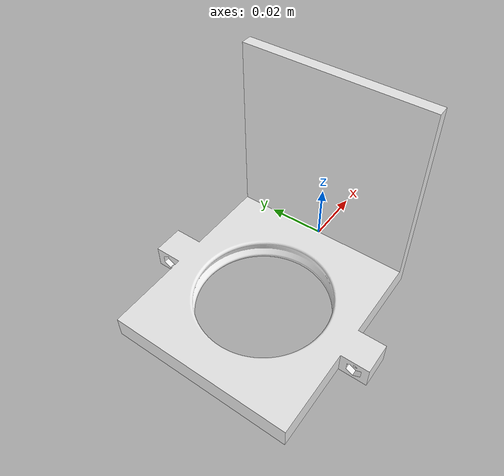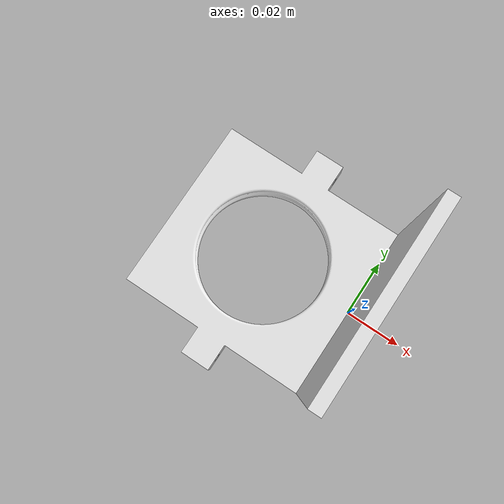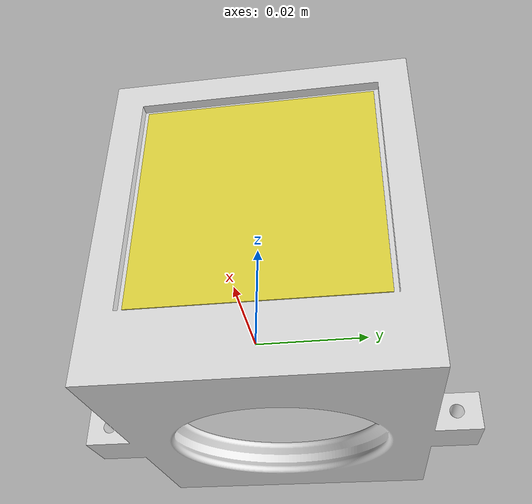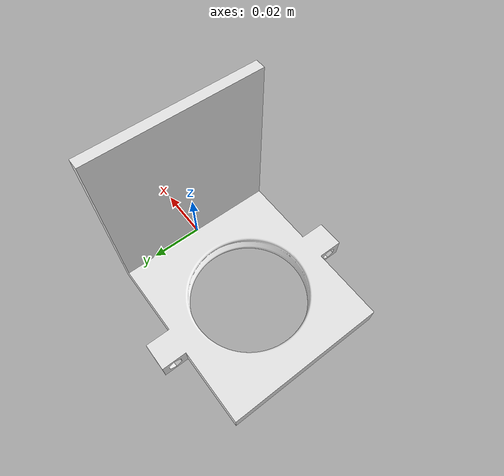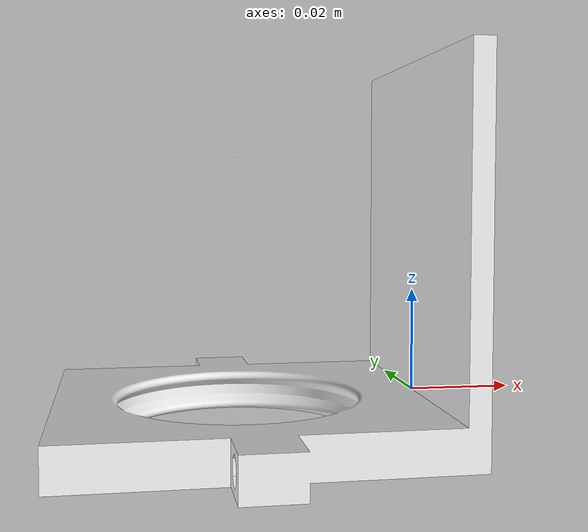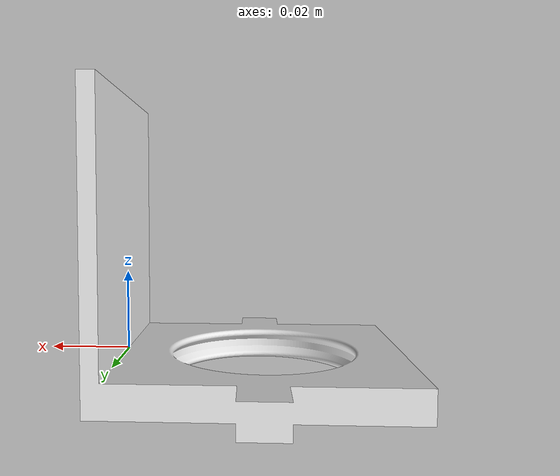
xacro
<?xml version="1.0"?>
<robot name="cup" xmlns:xacro="http://www.ros.org/wiki/xacro">

	<!-- Import the bbot macro -->
	<xacro:include filename="$(find bbot_description)/urdf/ingredient_cup.xacro"/>

  <!-- arguments to pass on -->
  <xacro:arg name="aruco_dae_path" default="bbot_aruco/markers/aruco_99_50mm.dae"/>

  <!-- call bbot xacro -->
  <xacro:cup aruco_dae_path="$(arg aruco_dae_path)"/>
</robot>

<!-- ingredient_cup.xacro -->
<robot xmlns:xacro="http://www.ros.org/wiki/xacro">
	<xacro:macro name="cup" params="aruco_dae_path">
		<gazebo reference="jigger">
	        <material>Gazebo/Grey</material>
	        <mu1>0.2</mu1>
	        <mu2>0.2</mu2>
	    </gazebo>

	    <gazebo reference="jigger_holder">
	        <material>Gazebo/White</material>
	        <mu1>0.2</mu1>
	        <mu2>0.2</mu2>
	    </gazebo>
		<!-- * * * Link Definitions * * * -->
		<link name="base"/>
		<joint name="joint_base_to_holder" type="fixed">
	            <parent link="base"/>
	            <child link="jigger_holder"/>
	            <origin xyz="0 0 0" rpy="${pi/2.0} 0 ${-pi/2.0}"/>
	    </joint>

		<link name="jigger_holder">
			<inertial>
				<origin xyz="0.0 0 0" rpy="0.0 0 0"/>
				<mass value="0.01" />
				<inertia ixx="1.0" ixy="0.0" ixz="0.0" iyy="1.0" iyz="0.0" izz="1.0"/>
			</inertial>
			<collision>
				<origin xyz="0.0 0 0" rpy="0.0 0 0"/>
				<geometry>
					<mesh filename="package://bbot_description/meshes/jigger_holder_complete.stl" scale="0.001 0.001 0.001"/>
				</geometry>
			</collision>
			<visual>
				<origin rpy="0.0 0 0" xyz="0.0 0 0"/>
				<geometry>
					<mesh filename="package://bbot_description/meshes/jigger_holder_complete.stl" scale="0.001 0.001 0.001"/>
				</geometry>
				<material name="White"/>
			</visual>
		</link>

		<joint name="joint_holder_to_jigger" type="fixed">
	            <parent link="jigger_holder"/>
	            <child link="jigger"/>
	            <origin xyz="0 0.04609 0.035" rpy="${pi} 0 0"/>
	    </joint>

		<link name="jigger">
			<inertial>
				<origin xyz="0.0 0 0" rpy="0.0 0.0 0"/>
				<mass value="0.01" />
				<inertia ixx="1.0" ixy="0.0" ixz="0.0" iyy="1.0" iyz="0.0" izz="1.0"/>
			</inertial>
			<collision>
				<origin xyz="0.0 0 0" rpy="0.0 0 0"/>
				<geometry>
					<mesh filename="package://bbot_description/meshes/jigger.stl" scale="0.001 0.001 0.001"/>
				</geometry>
			</collision>
			<visual>
				<origin rpy="0.0 0 0" xyz="0.0 0 0"/>
				<geometry>
					<mesh filename="package://bbot_description/meshes/jigger.stl" scale="0.001 0.001 0.001"/>
				</geometry>
				<material name="White"/>
			</visual>
		</link>

		<joint name="joint_holder_to_aruco" type="fixed">
	            <parent link="jigger_holder"/>
	            <child link="aruco_marker"/>
	            <origin xyz="0 0.0325 -0.002" rpy="0 3.1415 3.1415"/>
	    </joint>

		<link name="aruco_marker">
			<inertial>
				<origin xyz="0.0 0 0" rpy="0.0 0 0"/>
				<mass value="0.01" />
				<inertia ixx="1.0" ixy="0.0" ixz="0.0" iyy="1.0" iyz="0.0" izz="1.0"/>
			</inertial>
			<collision>
				<origin xyz="0.0 0 0" rpy="0.0 0 0"/>
				<geometry>
					<mesh filename="package://${aruco_dae_path}"/>
				</geometry>
			</collision>
			<visual>
				<origin rpy="0.0 0 0" xyz="0.0 0 0"/>
				<geometry>
					<mesh filename="package://${aruco_dae_path}"/>
				</geometry>
			</visual>
		</link>

	</xacro:macro>
</robot>
